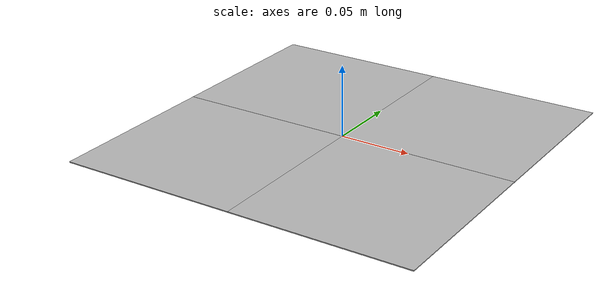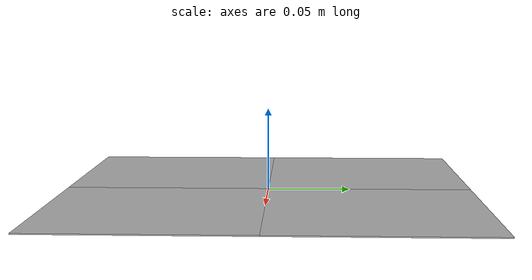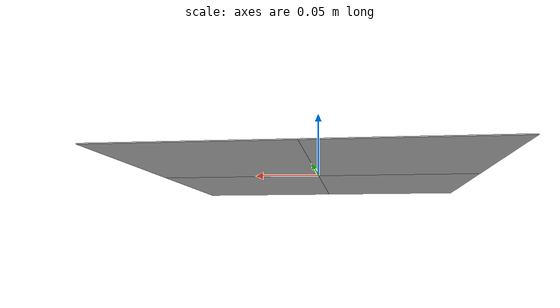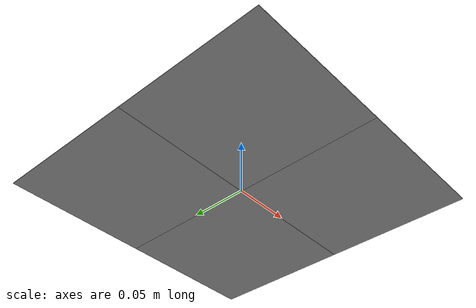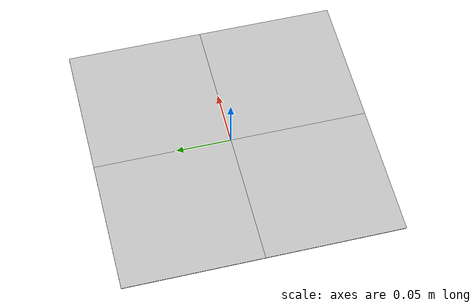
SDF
<?xml version="1.0" ?>
 <sdf version="1.5">
   <model name='board_00'>
      <link name='tag_00'>
        <pose relative_to='__model__'>-0.0625 -0.0625 0 0 0 0</pose>
        <visual name='vis_tag_00'>
          <geometry>
            <mesh>
              <scale>0.1 0.1 0.1</scale>
              <uri>model://board_00/tag36_11_00000.dae</uri>
            </mesh>
          </geometry>
        </visual>
      </link>
      <link name='tag_01'>
        <pose relative_to='__model__'>0.0625 -0.0625 0 0 0 0</pose>
        <visual name='vis_tag_01'>
          <geometry>
            <mesh>
              <scale>0.1 0.1 0.1</scale>
              <uri>model://board_00/tag36_11_00001.dae</uri>
            </mesh>
          </geometry>
        </visual>
      </link>
      <link name='tag_02'>
        <pose relative_to='__model__'>-0.0625 0.0625 0 0 0 0</pose>
        <visual name='vis_tag_02'>
          <geometry>
            <mesh>
              <scale>0.1 0.1 0.1</scale>
              <uri>model://board_00/tag36_11_00002.dae</uri>
            </mesh>
          </geometry>
        </visual>
      </link>
      <link name='tag_03'>
        <pose relative_to='__model__'>0.0625 0.0625 0 0 0 0</pose>
        <visual name='vis_tag_03'>
          <geometry>
            <mesh>
              <scale>0.1 0.1 0.1</scale>
              <uri>model://board_00/tag36_11_00003.dae</uri>
            </mesh>
          </geometry>
        </visual>
      </link>
    </model>
 </sdf>
